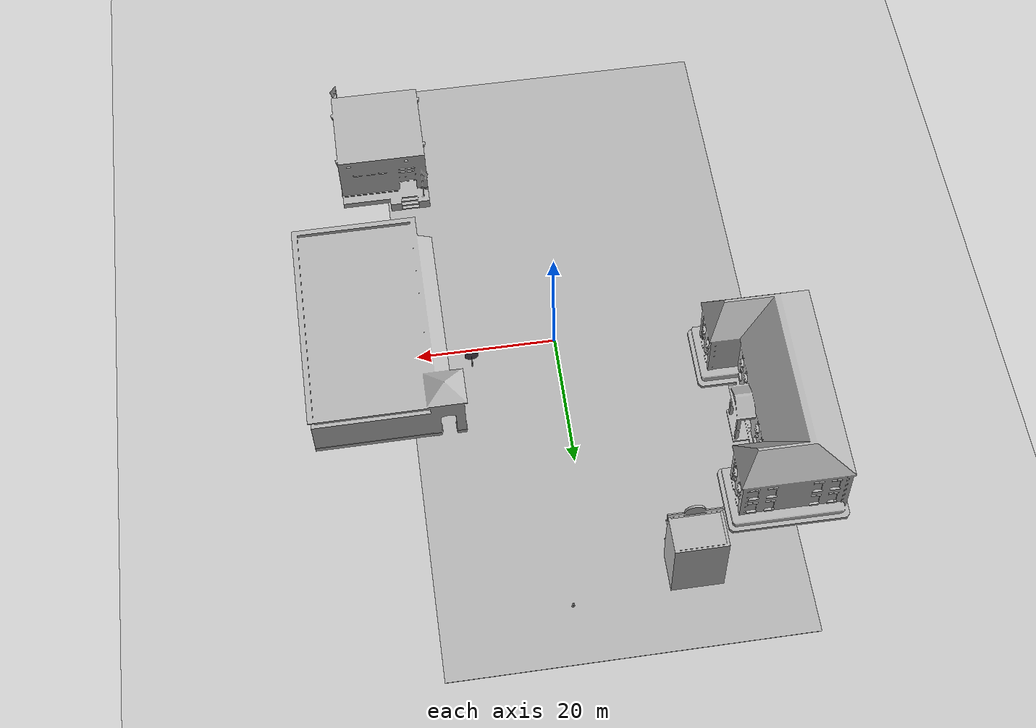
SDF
<sdf version="1.7">
 <world name="default">
  <light name="sun" type="directional">
   <pose>0 0 10 0 -0 0</pose>
   <diffuse>0.8 0.8 0.8 1</diffuse>
   <specular>0.2 0.2 0.2 1</specular>
   <attenuation>
    <range>1000</range>
    <constant>0.9</constant>
    <linear>0.01</linear>
    <quadratic>0.001</quadratic>
   </attenuation>
   <direction>-0.5 0.1 -0.9</direction>
   <spot><inner_angle>0</inner_angle><outer_angle>0</outer_angle><falloff>0</falloff></spot>
  </light>
  <model name="ground_plane">
   <static>1</static>
   <link name="link">
    <collision name="collision">
     <geometry><plane><normal>0 0 1</normal><size>100 100</size></plane></geometry>
     <surface>
      <contact><collide_bitmask>65535</collide_bitmask></contact>
      <friction><ode><mu>100</mu><mu2>50</mu2></ode></friction>
     </surface>
    </collision>
    <visual name="visual">
     <cast_shadows>0</cast_shadows>
     <geometry><plane><normal>0 0 1</normal><size>100 100</size></plane></geometry>
     <material>
      <script><uri>file://media/materials/scripts/gazebo.material</uri><name>Gazebo/Grey</name></script>
     </material>
    </visual>
   </link>
  </model>
  <gravity>0 0 -9.8</gravity>
  <magnetic_field>6e-06 2.3e-05 -4.2e-05</magnetic_field>
  <atmosphere type="adiabatic"/>
  <physics type="ode">
   <max_step_size>0.001</max_step_size>
   <real_time_factor>1</real_time_factor>
   <real_time_update_rate>1000</real_time_update_rate>
  </physics>
  <scene><ambient>0.4 0.4 0.4 1</ambient><background>0.7 0.7 0.7 1</background><shadows>1</shadows></scene>
  <audio><device>default</device></audio>
  <spherical_coordinates>
   <surface_model>EARTH_WGS84</surface_model>
   <latitude_deg>0</latitude_deg>
   <longitude_deg>0</longitude_deg>
   <elevation>0</elevation>
   <heading_deg>0</heading_deg>
  </spherical_coordinates>
  <model name="road_plane">
   <static>1</static>
   <link name="link">
    <collision name="collision"><geometry><box><size>5 10 0.1</size></box></geometry></collision>
    <visual name="visual">
     <cast_shadows>0</cast_shadows>
     <geometry><box><size>50 100 0.1</size></box></geometry>
     <material>
      <script>
       <uri>file:///home/dalitso/src/senior_design/Autonomous-Vehicle-End-to-End-Control-Project/install/gazebo_project/share/gazebo_project/model/road_plane/materials/scripts</uri>
       <uri>file:///home/dalitso/src/senior_design/Autonomous-Vehicle-End-to-End-Control-Project/install/gazebo_project/share/gazebo_project/model/road_plane/materials/textures</uri>
       <name>vrc/plane</name>
      </script>
     </material>
    </visual>
   </link>
   <pose>-3.44747 0.037578 0 0 -0 0</pose>
  </model>
  <model name="school">
   <static>1</static>
   <link name="link">
    <collision name="collision">
     <geometry>
      <mesh>
       <uri>file:///home/dalitso/src/senior_design/Autonomous-Vehicle-End-to-End-Control-Project/install/gazebo_project/share/gazebo_project/model/school/meshes/school.dae</uri>
      </mesh>
     </geometry>
    </collision>
    <visual name="visual">
     <geometry>
      <mesh>
       <uri>file:///home/dalitso/src/senior_design/Autonomous-Vehicle-End-to-End-Control-Project/install/gazebo_project/share/gazebo_project/model/school/meshes/school.dae</uri>
      </mesh>
     </geometry>
    </visual>
   </link>
   <pose>-30.369 17.8454 0 0 -0 1.56496</pose>
  </model>
  <model name="grocery_store">
   <static>1</static>
   <link name="link">
    <collision name="collision">
     <pose>0 0 4.04605 0 -0 0</pose>
     <geometry><box><size>32.1985 17.5425 8.09209</size></box></geometry>
    </collision>
    <visual name="visual">
     <pose>0 -1.96155 0 0 -0 0</pose>
     <geometry>
      <mesh>
       <uri>file:///home/dalitso/src/senior_design/Autonomous-Vehicle-End-to-End-Control-Project/install/gazebo_project/share/gazebo_project/model/grocery_store/meshes/grocery_store.dae</uri>
      </mesh>
     </geometry>
    </visual>
   </link>
   <pose>26.8988 -2.86514 0 0 -0 1.57412</pose>
  </model>
  <model name="fire_hydrant">
   <static>1</static>
   <link name="link">
    <collision name="collision">
     <geometry>
      <mesh>
       <uri>file:///home/dalitso/src/senior_design/Autonomous-Vehicle-End-to-End-Control-Project/install/gazebo_project/share/gazebo_project/model/fire_hydrant/meshes/fire_hydrant.dae</uri>
      </mesh>
     </geometry>
    </collision>
    <visual name="visual">
     <geometry>
      <mesh>
       <uri>file:///home/dalitso/src/senior_design/Autonomous-Vehicle-End-to-End-Control-Project/install/gazebo_project/share/gazebo_project/model/fire_hydrant/meshes/fire_hydrant.dae</uri>
      </mesh>
     </geometry>
    </visual>
   </link>
   <pose>3.48085 41.7854 0 0 -0 0</pose>
  </model>
  <model name="police_station">
   <static>1</static>
   <link name="link">
    <collision name="collision_main">
     <pose>0 0 4.28998 0 -0 0</pose>
     <geometry><box><size>13.037 13.037 8.57995</size></box></geometry>
    </collision>
    <collision name="collision_landing">
     <pose>0 0 0.464086 0 -0 0</pose>
     <geometry><box><size>13.037 16.2446 0.928173</size></box></geometry>
    </collision>
    <visual name="visual">
     <geometry>
      <mesh>
       <uri>file:///home/dalitso/src/senior_design/Autonomous-Vehicle-End-to-End-Control-Project/install/gazebo_project/share/gazebo_project/model/police_station/meshes/police_station.dae</uri>
      </mesh>
     </geometry>
    </visual>
   </link>
   <pose>21.7911 -36.6556 0 0 -0 0</pose>
  </model>
  <model name="salon">
   <static>1</static>
   <link name="link">
    <collision name="collision">
     <pose>0 0 5.69469 0 -0 0</pose>
     <geometry><box><size>7.21297 5.37875 11.3894</size></box></geometry>
    </collision>
    <visual name="visual">
     <pose>0 -0.903605 0 0 -0 0</pose>
     <geometry>
      <mesh>
       <uri>file:///home/dalitso/src/senior_design/Autonomous-Vehicle-End-to-End-Control-Project/install/gazebo_project/share/gazebo_project/model/salon/meshes/salon.dae</uri>
      </mesh>
     </geometry>
    </visual>
   </link>
   <pose>-13.3541 38.727 0 0 -0 0</pose>
  </model>
  <model name="Stop Sign">
   <static>1</static>
   <link name="link">
    <collision name="collision">
     <geometry>
      <mesh>
       <uri>file:///home/dalitso/src/senior_design/Autonomous-Vehicle-End-to-End-Control-Project/install/gazebo_project/share/gazebo_project/model/stop_sign/meshes/stop_sign.dae</uri>
      </mesh>
     </geometry>
    </collision>
    <visual name="visual">
     <geometry>
      <mesh>
       <uri>file:///home/dalitso/src/senior_design/Autonomous-Vehicle-End-to-End-Control-Project/install/gazebo_project/share/gazebo_project/model/stop_sign/meshes/stop_sign.dae</uri>
      </mesh>
     </geometry>
     <material>
      <script>
       <uri>file:///home/dalitso/src/senior_design/Autonomous-Vehicle-End-to-End-Control-Project/install/gazebo_project/share/gazebo_project/model/stop_sign/materials/scripts</uri>
       <uri>file:///home/dalitso/src/senior_design/Autonomous-Vehicle-End-to-End-Control-Project/install/gazebo_project/share/gazebo_project/model/stop_sign/materials/textures</uri>
       <name>StopSign/Diffuse</name>
      </script>
     </material>
    </visual>
   </link>
   <pose>12.3049 2.67082 0 0 -0 0</pose>
  </model>
 </world>
</sdf>
